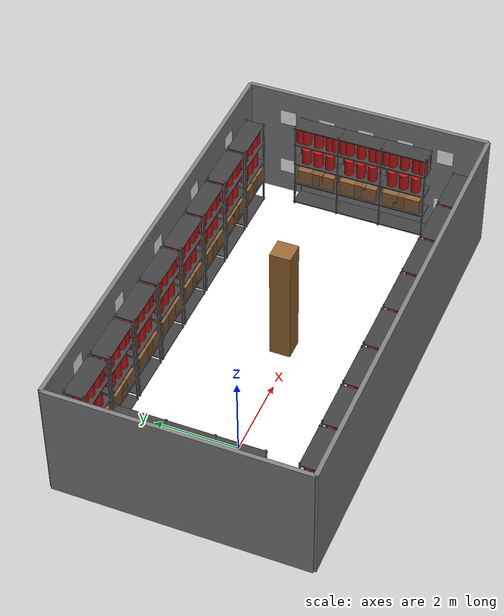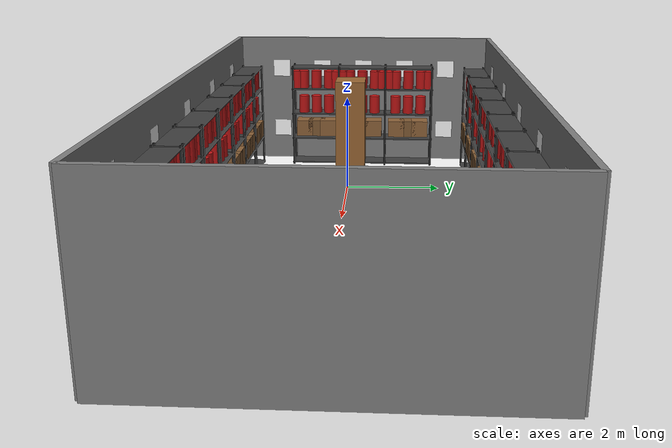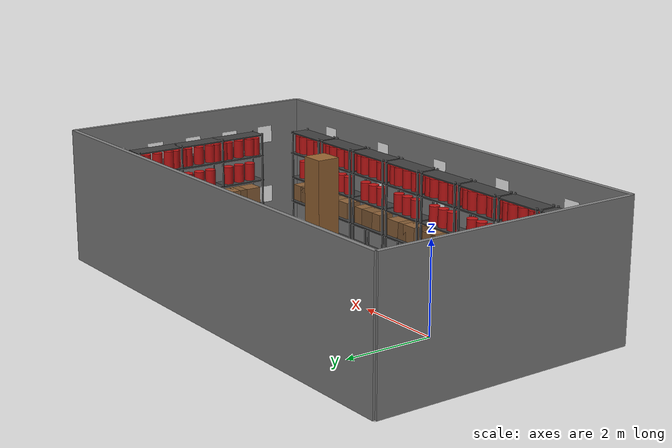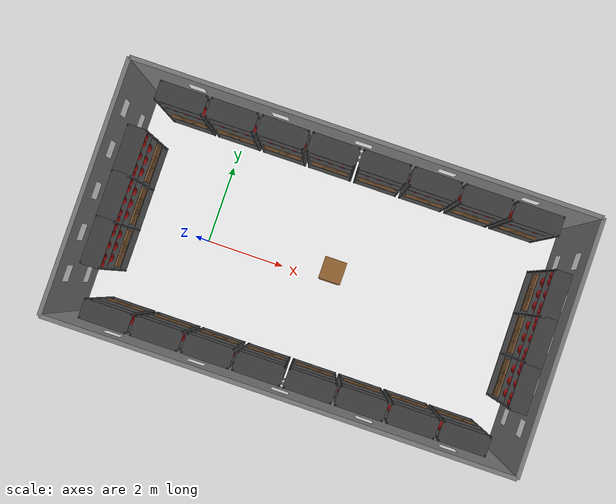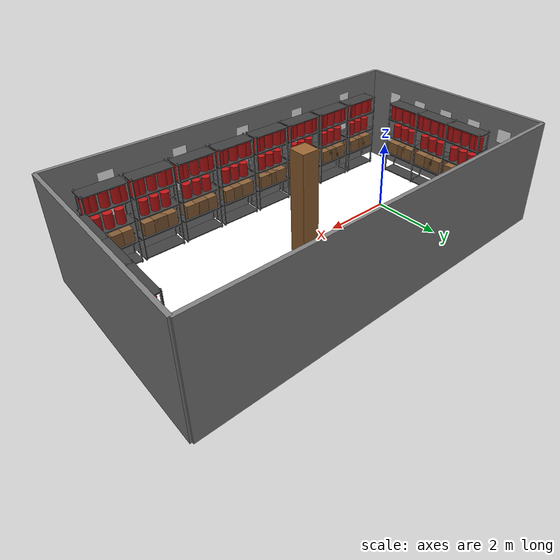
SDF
<?xml version="1.0"?>
<sdf version="1.7">
  <world name="bkk_daa">

<!-- Physics settings -->
<physics type="ode">
  <max_step_size>0.004</max_step_size>
  <real_time_factor>1.0</real_time_factor>
  <real_time_update_rate>250</real_time_update_rate>
</physics>
<gravity>0 0 -9.8</gravity>

<!-- Magnetic field - Taiwan location (23.089813°N, 120.307312°E) -->
<magnetic_field>2.5e-05 1.8e-05 -4.0e-05</magnetic_field>

<!-- Atmosphere -->
<atmosphere type="adiabatic"/>

<!-- Spherical coordinates for GPS - Taiwan location (7QM238Q4+WW) -->
<spherical_coordinates>
  <surface_model>EARTH_WGS84</surface_model>
  <world_frame_orientation>ENU</world_frame_orientation>
  <latitude_deg>23.089813</latitude_deg>
  <longitude_deg>120.307312</longitude_deg>
  <elevation>0</elevation>
</spherical_coordinates>

<!-- Scene settings with no shadows -->
<scene>
  <ambient>1 1 1 1</ambient>
  <background>1 1 1 1</background>
  <shadows>false</shadows>
</scene>

<!-- GUI camera with top-down view -->
<gui>
  <camera name="user_camera">
    <pose>1.0 -0.0 20 0 1.57 -1.5707963267948966</pose>
  </camera>
</gui>

<!-- Overhead directional light with no shadows -->
<light type="directional" name="no_shadow_light">
  <cast_shadows>false</cast_shadows>
  <pose>0 0 10 0 0 0</pose>
  <diffuse>1 1 1 1</diffuse>
  <specular>0.1 0.1 0.1 1</specular>
  <attenuation>
    <range>1000</range>
    <constant>1</constant>
    <linear>0</linear>
    <quadratic>0</quadratic>
  </attenuation>
  <direction>0 0 -1</direction>
</light>

<!-- Top-down camera directly above the grid -->
<model name="top_camera">
  <static>true</static>
  <pose>1.0 -0.0 20 0 1.5708 -1.5707963267948966</pose>
  <link name="link">
    <sensor name="top_down_camera" type="camera">
      <pose>0 0 0 0 0 0</pose>
      <camera>
        <horizontal_fov>1.047</horizontal_fov>
        <image>
          <width>800</width>
          <height>800</height>
          <format>R8G8B8</format>
        </image>
        <clip>
          <near>0.1</near>
          <far>100</far>
        </clip>
      </camera>
      <always_on>true</always_on>
      <update_rate>30</update_rate>
      <visualize>true</visualize>
    </sensor>
  </link>
</model>

    <!-- Outer green ground plane (6x11) -->
    <model name="outer_ground_plane">
      <static>true</static>
      <pose>3.0 0.25 -0.01 0 0 -1.5707963267948966</pose>
      <link name="link">
        <collision name="collision">
          <geometry>
            <plane>
              <normal>0 0 1</normal>
              <size>6 11</size>
            </plane>
          </geometry>
          <surface>
            <friction>
              <ode/>
            </friction>
            <bounce/>
            <contact/>
          </surface>
        </collision>
        <visual name="visual">
          <geometry>
            <plane>
              <normal>0 0 1</normal>
              <size>6 11</size>
            </plane>
          </geometry>
          <material>
            <diffuse>1 1 1 1</diffuse>
            <specular>0.1 0.1 0.1 1</specular>
            <pbr>
              <metal>
                <albedo_map>model://bkk_daa_floor_textures/floor_outer.png</albedo_map>
              </metal>
            </pbr>
          </material>
        </visual>
      </link>
    </model>

    <!-- Main brown ground plane (4.5x9) with origin at bottom-left corner -->
    <model name="ground_plane">
      <static>true</static>
      <pose>3.0 0.25 0 0 0 -1.5707963267948966</pose>
      <link name="link">
        <collision name="collision">
          <geometry>
            <plane>
              <normal>0 0 1</normal>
              <size>4.5 9</size>
            </plane>
          </geometry>
          <surface>
            <friction>
              <ode/>
            </friction>
            <bounce/>
            <contact/>
          </surface>
        </collision>
        <visual name="visual">
          <geometry>
            <plane>
              <normal>0 0 1</normal>
              <size>4.5 9</size>
            </plane>
          </geometry>
          <material>
            <diffuse>1 1 1 1</diffuse>
            <specular>0.1 0.1 0.1 1</specular>
            <pbr>
              <metal>
                <albedo_map>model://bkk_daa_floor_textures/floor_inner.png</albedo_map>
              </metal>
            </pbr>
          </material>
        </visual>
      </link>
    </model>

    <!-- Wall ArUco markers: DICT_4X4_50 ids 0-49 on interior faces (textures: wall_aruco_textures) -->

    <!-- Perimeter walls around outer green boundary (6x11) -->
    <model name="green_boundary_wall_north">
      <static>true</static>
      <pose>8.5 0.25 1.5 0 0 -1.5707963267948966</pose>
      <link name="link">
        <collision name="collision">
          <geometry>
            <box>
              <size>6.0 0.1 3.0</size>
            </box>
          </geometry>
        </collision>
        <visual name="visual">
          <geometry>
            <box>
              <size>6.0 0.1 3.0</size>
            </box>
          </geometry>
          <material>
            <ambient>0.3 0.3 0.3 1</ambient>
            <diffuse>0.5 0.5 0.5 1</diffuse>
            <specular>0.1 0.1 0.1 1</specular>
          </material>
        </visual>
        <visual name="aruco_00">
          <pose>-2.0 -0.051 -0.75 0 0 0</pose>
          <geometry>
            <plane>
              <normal>0 -1 0</normal>
              <size>0.4 0.4</size>
            </plane>
          </geometry>
          <material>
            <diffuse>1 1 1 1</diffuse>
            <specular>0.1 0.1 0.1 1</specular>
            <pbr>
              <metal>
                <albedo_map>model://wall_aruco_textures/marker_00.png</albedo_map>
              </metal>
            </pbr>
          </material>
        </visual>
        <visual name="aruco_01">
          <pose>-1.0 -0.051 -0.75 0 0 0</pose>
          <geometry>
            <plane>
              <normal>0 -1 0</normal>
              <size>0.4 0.4</size>
            </plane>
          </geometry>
          <material>
            <diffuse>1 1 1 1</diffuse>
            <specular>0.1 0.1 0.1 1</specular>
            <pbr>
              <metal>
                <albedo_map>model://wall_aruco_textures/marker_01.png</albedo_map>
              </metal>
            </pbr>
          </material>
        </visual>
        <visual name="aruco_02">
          <pose>0.0 -0.051 -0.75 0 0 0</pose>
          <geometry>
            <plane>
              <normal>0 -1 0</normal>
              <size>0.4 0.4</size>
            </plane>
          </geometry>
          <material>
            <diffuse>1 1 1 1</diffuse>
            <specular>0.1 0.1 0.1 1</specular>
            <pbr>
              <metal>
                <albedo_map>model://wall_aruco_textures/marker_02.png</albedo_map>
              </metal>
            </pbr>
          </material>
        </visual>
        <visual name="aruco_03">
          <pose>1.0 -0.051 -0.75 0 0 0</pose>
          <geometry>
            <plane>
              <normal>0 -1 0</normal>
              <size>0.4 0.4</size>
            </plane>
          </geometry>
          <material>
            <diffuse>1 1 1 1</diffuse>
            <specular>0.1 0.1 0.1 1</specular>
            <pbr>
              <metal>
                <albedo_map>model://wall_aruco_textures/marker_03.png</albedo_map>
              </metal>
            </pbr>
          </material>
        </visual>
        <visual name="aruco_04">
          <pose>2.0 -0.051 -0.75 0 0 0</pose>
          <geometry>
            <plane>
              <normal>0 -1 0</normal>
              <size>0.4 0.4</size>
            </plane>
          </geometry>
          <material>
            <diffuse>1 1 1 1</diffuse>
            <specular>0.1 0.1 0.1 1</specular>
            <pbr>
              <metal>
                <albedo_map>model://wall_aruco_textures/marker_04.png</albedo_map>
              </metal>
            </pbr>
          </material>
        </visual>
        <visual name="aruco_05">
          <pose>-2.0 -0.051 0.75 0 0 0</pose>
          <geometry>
            <plane>
              <normal>0 -1 0</normal>
              <size>0.4 0.4</size>
            </plane>
          </geometry>
          <material>
            <diffuse>1 1 1 1</diffuse>
            <specular>0.1 0.1 0.1 1</specular>
            <pbr>
              <metal>
                <albedo_map>model://wall_aruco_textures/marker_05.png</albedo_map>
              </metal>
            </pbr>
          </material>
        </visual>
        <visual name="aruco_06">
          <pose>-1.0 -0.051 0.75 0 0 0</pose>
          <geometry>
            <plane>
              <normal>0 -1 0</normal>
              <size>0.4 0.4</size>
            </plane>
          </geometry>
          <material>
            <diffuse>1 1 1 1</diffuse>
            <specular>0.1 0.1 0.1 1</specular>
            <pbr>
              <metal>
                <albedo_map>model://wall_aruco_textures/marker_06.png</albedo_map>
              </metal>
            </pbr>
          </material>
        </visual>
        <visual name="aruco_07">
          <pose>0.0 -0.051 0.75 0 0 0</pose>
          <geometry>
            <plane>
              <normal>0 -1 0</normal>
              <size>0.4 0.4</size>
            </plane>
          </geometry>
          <material>
            <diffuse>1 1 1 1</diffuse>
            <specular>0.1 0.1 0.1 1</specular>
            <pbr>
              <metal>
                <albedo_map>model://wall_aruco_textures/marker_07.png</albedo_map>
              </metal>
            </pbr>
          </material>
        </visual>
        <visual name="aruco_08">
          <pose>1.0 -0.051 0.75 0 0 0</pose>
          <geometry>
            <plane>
              <normal>0 -1 0</normal>
              <size>0.4 0.4</size>
            </plane>
          </geometry>
          <material>
            <diffuse>1 1 1 1</diffuse>
            <specular>0.1 0.1 0.1 1</specular>
            <pbr>
              <metal>
                <albedo_map>model://wall_aruco_textures/marker_08.png</albedo_map>
              </metal>
            </pbr>
          </material>
        </visual>
        <visual name="aruco_09">
          <pose>2.0 -0.051 0.75 0 0 0</pose>
          <geometry>
            <plane>
              <normal>0 -1 0</normal>
              <size>0.4 0.4</size>
            </plane>
          </geometry>
          <material>
            <diffuse>1 1 1 1</diffuse>
            <specular>0.1 0.1 0.1 1</specular>
            <pbr>
              <metal>
                <albedo_map>model://wall_aruco_textures/marker_09.png</albedo_map>
              </metal>
            </pbr>
          </material>
        </visual>
      </link>
    </model>

    <model name="green_boundary_wall_south">
      <static>true</static>
      <pose>-2.5 0.25 1.5 0 0 -1.5707963267948966</pose>
      <link name="link">
        <collision name="collision">
          <geometry>
            <box>
              <size>6.0 0.1 3.0</size>
            </box>
          </geometry>
        </collision>
        <visual name="visual">
          <geometry>
            <box>
              <size>6.0 0.1 3.0</size>
            </box>
          </geometry>
          <material>
            <ambient>0.3 0.3 0.3 1</ambient>
            <diffuse>0.5 0.5 0.5 1</diffuse>
            <specular>0.1 0.1 0.1 1</specular>
          </material>
        </visual>
        <visual name="aruco_10">
          <pose>-2.0 0.051 -0.75 0 0 0</pose>
          <geometry>
            <plane>
              <normal>0 1 0</normal>
              <size>0.4 0.4</size>
            </plane>
          </geometry>
          <material>
            <diffuse>1 1 1 1</diffuse>
            <specular>0.1 0.1 0.1 1</specular>
            <pbr>
              <metal>
                <albedo_map>model://wall_aruco_textures/marker_10.png</albedo_map>
              </metal>
            </pbr>
          </material>
        </visual>
        <visual name="aruco_11">
          <pose>-1.0 0.051 -0.75 0 0 0</pose>
          <geometry>
            <plane>
              <normal>0 1 0</normal>
              <size>0.4 0.4</size>
            </plane>
          </geometry>
          <material>
            <diffuse>1 1 1 1</diffuse>
            <specular>0.1 0.1 0.1 1</specular>
            <pbr>
              <metal>
                <albedo_map>model://wall_aruco_textures/marker_11.png</albedo_map>
              </metal>
            </pbr>
          </material>
        </visual>
        <visual name="aruco_12">
          <pose>0.0 0.051 -0.75 0 0 0</pose>
          <geometry>
            <plane>
              <normal>0 1 0</normal>
              <size>0.4 0.4</size>
            </plane>
          </geometry>
          <material>
            <diffuse>1 1 1 1</diffuse>
            <specular>0.1 0.1 0.1 1</specular>
            <pbr>
              <metal>
                <albedo_map>model://wall_aruco_textures/marker_12.png</albedo_map>
              </metal>
            </pbr>
          </material>
        </visual>
        <visual name="aruco_13">
          <pose>1.0 0.051 -0.75 0 0 0</pose>
          <geometry>
            <plane>
              <normal>0 1 0</normal>
              <size>0.4 0.4</size>
            </plane>
          </geometry>
          <material>
            <diffuse>1 1 1 1</diffuse>
            <specular>0.1 0.1 0.1 1</specular>
            <pbr>
              <metal>
                <albedo_map>model://wall_aruco_textures/marker_13.png</albedo_map>
              </metal>
            </pbr>
          </material>
        </visual>
        <visual name="aruco_14">
          <pose>2.0 0.051 -0.75 0 0 0</pose>
          <geometry>
            <plane>
              <normal>0 1 0</normal>
              <size>0.4 0.4</size>
            </plane>
          </geometry>
          <material>
            <diffuse>1 1 1 1</diffuse>
            <specular>0.1 0.1 0.1 1</specular>
            <pbr>
              <metal>
                <albedo_map>model://wall_aruco_textures/marker_14.png</albedo_map>
              </metal>
            </pbr>
          </material>
        </visual>
        <visual name="aruco_15">
          <pose>-2.0 0.051 0.75 0 0 0</pose>
          <geometry>
            <plane>
              <normal>0 1 0</normal>
              <size>0.4 0.4</size>
            </plane>
          </geometry>
          <material>
            <diffuse>1 1 1 1</diffuse>
            <specular>0.1 0.1 0.1 1</specular>
            <pbr>
              <metal>
                <albedo_map>model://wall_aruco_textures/marker_15.png</albedo_map>
              </metal>
            </pbr>
          </material>
        </visual>
        <visual name="aruco_16">
          <pose>-1.0 0.051 0.75 0 0 0</pose>
          <geometry>
            <plane>
              <normal>0 1 0</normal>
              <size>0.4 0.4</size>
            </plane>
          </geometry>
          <material>
            <diffuse>1 1 1 1</diffuse>
            <specular>0.1 0.1 0.1 1</specular>
            <pbr>
              <metal>
                <albedo_map>model://wall_aruco_textures/marker_16.png</albedo_map>
              </metal>
            </pbr>
          </material>
        </visual>
        <visual name="aruco_17">
          <pose>0.0 0.051 0.75 0 0 0</pose>
          <geometry>
            <plane>
              <normal>0 1 0</normal>
              <size>0.4 0.4</size>
            </plane>
          </geometry>
          <material>
            <diffuse>1 1 1 1</diffuse>
            <specular>0.1 0.1 0.1 1</specular>
            <pbr>
              <metal>
                <albedo_map>model://wall_aruco_textures/marker_17.png</albedo_map>
              </metal>
            </pbr>
          </material>
        </visual>
        <visual name="aruco_18">
          <pose>1.0 0.051 0.75 0 0 0</pose>
          <geometry>
            <plane>
              <normal>0 1 0</normal>
              <size>0.4 0.4</size>
            </plane>
          </geometry>
          <material>
            <diffuse>1 1 1 1</diffuse>
            <specular>0.1 0.1 0.1 1</specular>
            <pbr>
              <metal>
                <albedo_map>model://wall_aruco_textures/marker_18.png</albedo_map>
              </metal>
            </pbr>
          </material>
        </visual>
        <visual name="aruco_19">
          <pose>2.0 0.051 0.75 0 0 0</pose>
          <geometry>
            <plane>
              <normal>0 1 0</normal>
              <size>0.4 0.4</size>
            </plane>
          </geometry>
          <material>
            <diffuse>1 1 1 1</diffuse>
            <specular>0.1 0.1 0.1 1</specular>
            <pbr>
              <metal>
                <albedo_map>model://wall_aruco_textures/marker_19.png</albedo_map>
              </metal>
            </pbr>
          </material>
        </visual>
      </link>
    </model>

    <model name="green_boundary_wall_east">
      <static>true</static>
      <pose>3.0 -2.75 1.5 0 0 -1.5707963267948966</pose>
      <link name="link">
        <collision name="collision">
          <geometry>
            <box>
              <size>0.1 11.0 3.0</size>
            </box>
          </geometry>
        </collision>
        <visual name="visual">
          <geometry>
            <box>
              <size>0.1 11.0 3.0</size>
            </box>
          </geometry>
          <material>
            <ambient>0.3 0.3 0.3 1</ambient>
            <diffuse>0.5 0.5 0.5 1</diffuse>
            <specular>0.1 0.1 0.1 1</specular>
          </material>
        </visual>
        <visual name="aruco_20">
          <pose>-0.051 -4.0 -0.85 0 0 0</pose>
          <geometry>
            <plane>
              <normal>-1 0 0</normal>
              <size>0.4 0.4</size>
            </plane>
          </geometry>
          <material>
            <diffuse>1 1 1 1</diffuse>
            <specular>0.1 0.1 0.1 1</specular>
            <pbr>
              <metal>
                <albedo_map>model://wall_aruco_textures/marker_20.png</albedo_map>
              </metal>
            </pbr>
          </material>
        </visual>
        <visual name="aruco_21">
          <pose>-0.051 -2.0 -0.85 0 0 0</pose>
          <geometry>
            <plane>
              <normal>-1 0 0</normal>
              <size>0.4 0.4</size>
            </plane>
          </geometry>
          <material>
            <diffuse>1 1 1 1</diffuse>
            <specular>0.1 0.1 0.1 1</specular>
            <pbr>
              <metal>
                <albedo_map>model://wall_aruco_textures/marker_21.png</albedo_map>
              </metal>
            </pbr>
          </material>
        </visual>
        <visual name="aruco_22">
          <pose>-0.051 0.0 -0.85 0 0 0</pose>
          <geometry>
            <plane>
              <normal>-1 0 0</normal>
              <size>0.4 0.4</size>
            </plane>
          </geometry>
          <material>
            <diffuse>1 1 1 1</diffuse>
            <specular>0.1 0.1 0.1 1</specular>
            <pbr>
              <metal>
                <albedo_map>model://wall_aruco_textures/marker_22.png</albedo_map>
              </metal>
            </pbr>
          </material>
        </visual>
        <visual name="aruco_23">
          <pose>-0.051 2.0 -0.85 0 0 0</pose>
          <geometry>
            <plane>
              <normal>-1 0 0</normal>
              <size>0.4 0.4</size>
            </plane>
          </geometry>
          <material>
            <diffuse>1 1 1 1</diffuse>
            <specular>0.1 0.1 0.1 1</specular>
            <pbr>
              <metal>
                <albedo_map>model://wall_aruco_textures/marker_23.png</albedo_map>
              </metal>
            </pbr>
          </material>
        </visual>
        <visual name="aruco_24">
          <pose>-0.051 4.0 -0.85 0 0 0</pose>
          <geometry>
            <plane>
              <normal>-1 0 0</normal>
              <size>0.4 0.4</size>
            </plane>
          </geometry>
          <material>
            <diffuse>1 1 1 1</diffuse>
            <specular>0.1 0.1 0.1 1</specular>
            <pbr>
              <metal>
                <albedo_map>model://wall_aruco_textures/marker_24.png</albedo_map>
              </metal>
            </pbr>
          </material>
        </visual>
        <visual name="aruco_25">
          <pose>-0.051 -4.0 0.0 0 0 0</pose>
          <geometry>
            <plane>
              <normal>-1 0 0</normal>
              <size>0.4 0.4</size>
            </plane>
          </geometry>
          <material>
            <diffuse>1 1 1 1</diffuse>
            <specular>0.1 0.1 0.1 1</specular>
            <pbr>
              <metal>
                <albedo_map>model://wall_aruco_textures/marker_25.png</albedo_map>
              </metal>
            </pbr>
          </material>
        </visual>
        <visual name="aruco_26">
          <pose>-0.051 -2.0 0.0 0 0 0</pose>
          <geometry>
            <plane>
              <normal>-1 0 0</normal>
              <size>0.4 0.4</size>
            </plane>
          </geometry>
          <material>
            <diffuse>1 1 1 1</diffuse>
            <specular>0.1 0.1 0.1 1</specular>
            <pbr>
              <metal>
                <albedo_map>model://wall_aruco_textures/marker_26.png</albedo_map>
              </metal>
            </pbr>
          </material>
        </visual>
        <visual name="aruco_27">
          <pose>-0.051 0.0 0.0 0 0 0</pose>
          <geometry>
            <plane>
              <normal>-1 0 0</normal>
              <size>0.4 0.4</size>
            </plane>
          </geometry>
          <material>
            <diffuse>1 1 1 1</diffuse>
            <specular>0.1 0.1 0.1 1</specular>
            <pbr>
              <metal>
                <albedo_map>model://wall_aruco_textures/marker_27.png</albedo_map>
              </metal>
            </pbr>
          </material>
        </visual>
        <visual name="aruco_28">
          <pose>-0.051 2.0 0.0 0 0 0</pose>
          <geometry>
            <plane>
              <normal>-1 0 0</normal>
              <size>0.4 0.4</size>
            </plane>
          </geometry>
          <material>
            <diffuse>1 1 1 1</diffuse>
            <specular>0.1 0.1 0.1 1</specular>
            <pbr>
              <metal>
                <albedo_map>model://wall_aruco_textures/marker_28.png</albedo_map>
              </metal>
            </pbr>
          </material>
        </visual>
        <visual name="aruco_29">
          <pose>-0.051 4.0 0.0 0 0 0</pose>
          <geometry>
            <plane>
              <normal>-1 0 0</normal>
              <size>0.4 0.4</size>
            </plane>
          </geometry>
          <material>
            <diffuse>1 1 1 1</diffuse>
            <specular>0.1 0.1 0.1 1</specular>
            <pbr>
              <metal>
                <albedo_map>model://wall_aruco_textures/marker_29.png</albedo_map>
              </metal>
            </pbr>
          </material>
        </visual>
        <visual name="aruco_30">
          <pose>-0.051 -4.0 0.85 0 0 0</pose>
          <geometry>
            <plane>
              <normal>-1 0 0</normal>
              <size>0.4 0.4</size>
            </plane>
          </geometry>
          <material>
            <diffuse>1 1 1 1</diffuse>
            <specular>0.1 0.1 0.1 1</specular>
            <pbr>
              <metal>
                <albedo_map>model://wall_aruco_textures/marker_30.png</albedo_map>
              </metal>
            </pbr>
          </material>
        </visual>
        <visual name="aruco_31">
          <pose>-0.051 -2.0 0.85 0 0 0</pose>
          <geometry>
            <plane>
              <normal>-1 0 0</normal>
              <size>0.4 0.4</size>
            </plane>
          </geometry>
          <material>
            <diffuse>1 1 1 1</diffuse>
            <specular>0.1 0.1 0.1 1</specular>
            <pbr>
              <metal>
                <albedo_map>model://wall_aruco_textures/marker_31.png</albedo_map>
              </metal>
            </pbr>
          </material>
        </visual>
        <visual name="aruco_32">
          <pose>-0.051 0.0 0.85 0 0 0</pose>
          <geometry>
            <plane>
              <normal>-1 0 0</normal>
              <size>0.4 0.4</size>
            </plane>
          </geometry>
          <material>
            <diffuse>1 1 1 1</diffuse>
            <specular>0.1 0.1 0.1 1</specular>
            <pbr>
              <metal>
                <albedo_map>model://wall_aruco_textures/marker_32.png</albedo_map>
              </metal>
            </pbr>
          </material>
        </visual>
        <visual name="aruco_33">
          <pose>-0.051 2.0 0.85 0 0 0</pose>
          <geometry>
            <plane>
              <normal>-1 0 0</normal>
              <size>0.4 0.4</size>
            </plane>
          </geometry>
          <material>
            <diffuse>1 1 1 1</diffuse>
            <specular>0.1 0.1 0.1 1</specular>
            <pbr>
              <metal>
                <albedo_map>model://wall_aruco_textures/marker_33.png</albedo_map>
              </metal>
            </pbr>
          </material>
        </visual>
        <visual name="aruco_34">
          <pose>-0.051 4.0 0.85 0 0 0</pose>
          <geometry>
            <plane>
              <normal>-1 0 0</normal>
              <size>0.4 0.4</size>
            </plane>
          </geometry>
          <material>
            <diffuse>1 1 1 1</diffuse>
            <specular>0.1 0.1 0.1 1</specular>
            <pbr>
              <metal>
                <albedo_map>model://wall_aruco_textures/marker_34.png</albedo_map>
              </metal>
            </pbr>
          </material>
        </visual>
      </link>
    </model>

    <model name="green_boundary_wall_west">
      <static>true</static>
      <pose>3.0 3.25 1.5 0 0 -1.5707963267948966</pose>
      <link name="link">
        <collision name="collision">
          <geometry>
            <box>
              <size>0.1 11.0 3.0</size>
            </box>
          </geometry>
        </collision>
        <visual name="visual">
          <geometry>
            <box>
              <size>0.1 11.0 3.0</size>
            </box>
          </geometry>
          <material>
            <ambient>0.3 0.3 0.3 1</ambient>
            <diffuse>0.5 0.5 0.5 1</diffuse>
            <specular>0.1 0.1 0.1 1</specular>
          </material>
        </visual>
        <visual name="aruco_35">
          <pose>0.051 -4.0 -0.85 0 0 0</pose>
          <geometry>
            <plane>
              <normal>1 0 0</normal>
              <size>0.4 0.4</size>
            </plane>
          </geometry>
          <material>
            <diffuse>1 1 1 1</diffuse>
            <specular>0.1 0.1 0.1 1</specular>
            <pbr>
              <metal>
                <albedo_map>model://wall_aruco_textures/marker_35.png</albedo_map>
              </metal>
            </pbr>
          </material>
        </visual>
        <visual name="aruco_36">
          <pose>0.051 -2.0 -0.85 0 0 0</pose>
          <geometry>
            <plane>
              <normal>1 0 0</normal>
              <size>0.4 0.4</size>
            </plane>
          </geometry>
          <material>
            <diffuse>1 1 1 1</diffuse>
            <specular>0.1 0.1 0.1 1</specular>
            <pbr>
              <metal>
                <albedo_map>model://wall_aruco_textures/marker_36.png</albedo_map>
              </metal>
            </pbr>
          </material>
        </visual>
        <visual name="aruco_37">
          <pose>0.051 0.0 -0.85 0 0 0</pose>
          <geometry>
            <plane>
              <normal>1 0 0</normal>
              <size>0.4 0.4</size>
            </plane>
          </geometry>
          <material>
            <diffuse>1 1 1 1</diffuse>
            <specular>0.1 0.1 0.1 1</specular>
            <pbr>
              <metal>
                <albedo_map>model://wall_aruco_textures/marker_37.png</albedo_map>
              </metal>
            </pbr>
          </material>
        </visual>
        <visual name="aruco_38">
          <pose>0.051 2.0 -0.85 0 0 0</pose>
          <geometry>
            <plane>
              <normal>1 0 0</normal>
              <size>0.4 0.4</size>
            </plane>
          </geometry>
          <material>
            <diffuse>1 1 1 1</diffuse>
            <specular>0.1 0.1 0.1 1</specular>
            <pbr>
              <metal>
                <albedo_map>model://wall_aruco_textures/marker_38.png</albedo_map>
              </metal>
            </pbr>
          </material>
        </visual>
        <visual name="aruco_39">
          <pose>0.051 4.0 -0.85 0 0 0</pose>
          <geometry>
            <plane>
              <normal>1 0 0</normal>
              <size>0.4 0.4</size>
            </plane>
          </geometry>
          <material>
            <diffuse>1 1 1 1</diffuse>
            <specular>0.1 0.1 0.1 1</specular>
            <pbr>
              <metal>
                <albedo_map>model://wall_aruco_textures/marker_39.png</albedo_map>
              </metal>
            </pbr>
          </material>
        </visual>
        <visual name="aruco_40">
          <pose>0.051 -4.0 0.0 0 0 0</pose>
          <geometry>
            <plane>
              <normal>1 0 0</normal>
              <size>0.4 0.4</size>
            </plane>
          </geometry>
          <material>
            <diffuse>1 1 1 1</diffuse>
            <specular>0.1 0.1 0.1 1</specular>
            <pbr>
              <metal>
                <albedo_map>model://wall_aruco_textures/marker_40.png</albedo_map>
              </metal>
            </pbr>
          </material>
        </visual>
        <visual name="aruco_41">
          <pose>0.051 -2.0 0.0 0 0 0</pose>
          <geometry>
            <plane>
              <normal>1 0 0</normal>
              <size>0.4 0.4</size>
            </plane>
          </geometry>
          <material>
            <diffuse>1 1 1 1</diffuse>
            <specular>0.1 0.1 0.1 1</specular>
            <pbr>
              <metal>
                <albedo_map>model://wall_aruco_textures/marker_41.png</albedo_map>
              </metal>
            </pbr>
          </material>
        </visual>
        <visual name="aruco_42">
          <pose>0.051 0.0 0.0 0 0 0</pose>
          <geometry>
            <plane>
              <normal>1 0 0</normal>
              <size>0.4 0.4</size>
            </plane>
          </geometry>
          <material>
            <diffuse>1 1 1 1</diffuse>
            <specular>0.1 0.1 0.1 1</specular>
            <pbr>
              <metal>
                <albedo_map>model://wall_aruco_textures/marker_42.png</albedo_map>
              </metal>
            </pbr>
          </material>
        </visual>
        <visual name="aruco_43">
          <pose>0.051 2.0 0.0 0 0 0</pose>
          <geometry>
            <plane>
              <normal>1 0 0</normal>
              <size>0.4 0.4</size>
            </plane>
          </geometry>
          <material>
            <diffuse>1 1 1 1</diffuse>
            <specular>0.1 0.1 0.1 1</specular>
            <pbr>
              <metal>
                <albedo_map>model://wall_aruco_textures/marker_43.png</albedo_map>
              </metal>
            </pbr>
          </material>
        </visual>
        <visual name="aruco_44">
          <pose>0.051 4.0 0.0 0 0 0</pose>
          <geometry>
            <plane>
              <normal>1 0 0</normal>
              <size>0.4 0.4</size>
            </plane>
          </geometry>
          <material>
            <diffuse>1 1 1 1</diffuse>
            <specular>0.1 0.1 0.1 1</specular>
            <pbr>
              <metal>
                <albedo_map>model://wall_aruco_textures/marker_44.png</albedo_map>
              </metal>
            </pbr>
          </material>
        </visual>
        <visual name="aruco_45">
          <pose>0.051 -4.0 0.85 0 0 0</pose>
          <geometry>
            <plane>
              <normal>1 0 0</normal>
              <size>0.4 0.4</size>
            </plane>
          </geometry>
          <material>
            <diffuse>1 1 1 1</diffuse>
            <specular>0.1 0.1 0.1 1</specular>
            <pbr>
              <metal>
                <albedo_map>model://wall_aruco_textures/marker_45.png</albedo_map>
              </metal>
            </pbr>
          </material>
        </visual>
        <visual name="aruco_46">
          <pose>0.051 -2.0 0.85 0 0 0</pose>
          <geometry>
            <plane>
              <normal>1 0 0</normal>
              <size>0.4 0.4</size>
            </plane>
          </geometry>
          <material>
            <diffuse>1 1 1 1</diffuse>
            <specular>0.1 0.1 0.1 1</specular>
            <pbr>
              <metal>
                <albedo_map>model://wall_aruco_textures/marker_46.png</albedo_map>
              </metal>
            </pbr>
          </material>
        </visual>
        <visual name="aruco_47">
          <pose>0.051 0.0 0.85 0 0 0</pose>
          <geometry>
            <plane>
              <normal>1 0 0</normal>
              <size>0.4 0.4</size>
            </plane>
          </geometry>
          <material>
            <diffuse>1 1 1 1</diffuse>
            <specular>0.1 0.1 0.1 1</specular>
            <pbr>
              <metal>
                <albedo_map>model://wall_aruco_textures/marker_47.png</albedo_map>
              </metal>
            </pbr>
          </material>
        </visual>
        <visual name="aruco_48">
          <pose>0.051 2.0 0.85 0 0 0</pose>
          <geometry>
            <plane>
              <normal>1 0 0</normal>
              <size>0.4 0.4</size>
            </plane>
          </geometry>
          <material>
            <diffuse>1 1 1 1</diffuse>
            <specular>0.1 0.1 0.1 1</specular>
            <pbr>
              <metal>
                <albedo_map>model://wall_aruco_textures/marker_48.png</albedo_map>
              </metal>
            </pbr>
          </material>
        </visual>
        <visual name="aruco_49">
          <pose>0.051 4.0 0.85 0 0 0</pose>
          <geometry>
            <plane>
              <normal>1 0 0</normal>
              <size>0.4 0.4</size>
            </plane>
          </geometry>
          <material>
            <diffuse>1 1 1 1</diffuse>
            <specular>0.1 0.1 0.1 1</specular>
            <pbr>
              <metal>
                <albedo_map>model://wall_aruco_textures/marker_49.png</albedo_map>
              </metal>
            </pbr>
          </material>
        </visual>
      </link>
    </model>

    <!-- Perimeter cabinets in green border ring (generated) -->
    <include>
      <uri>model://depot_barrel_rack</uri>
      <name>perimeter_cabinet_00</name>
      <pose>-1.2874999999999996 2.875 0.0 0 0 1.5707963267948966</pose>
    </include>
    <include>
      <uri>model://depot_barrel_rack</uri>
      <name>perimeter_cabinet_01</name>
      <pose>-0.06249999999999978 2.875 0.0 0 0 1.5707963267948966</pose>
    </include>
    <include>
      <uri>model://depot_barrel_rack</uri>
      <name>perimeter_cabinet_02</name>
      <pose>1.1625 2.875 0.0 0 0 1.5707963267948966</pose>
    </include>
    <include>
      <uri>model://depot_barrel_rack</uri>
      <name>perimeter_cabinet_03</name>
      <pose>2.3875000000000006 2.875 0.0 0 0 1.5707963267948966</pose>
    </include>
    <include>
      <uri>model://depot_barrel_rack</uri>
      <name>perimeter_cabinet_04</name>
      <pose>3.6125000000000007 2.875 0.0 0 0 1.5707963267948966</pose>
    </include>
    <include>
      <uri>model://depot_barrel_rack</uri>
      <name>perimeter_cabinet_05</name>
      <pose>4.8375 2.875 0.0 0 0 1.5707963267948966</pose>
    </include>
    <include>
      <uri>model://depot_barrel_rack</uri>
      <name>perimeter_cabinet_06</name>
      <pose>6.0625 2.875 0.0 0 0 1.5707963267948966</pose>
    </include>
    <include>
      <uri>model://depot_barrel_rack</uri>
      <name>perimeter_cabinet_07</name>
      <pose>7.2875 2.875 0.0 0 0 1.5707963267948966</pose>
    </include>
    <include>
      <uri>model://depot_barrel_rack</uri>
      <name>perimeter_cabinet_08</name>
      <pose>-1.2874999999999996 -2.375 0.0 0 0 -1.5707963267948966</pose>
    </include>
    <include>
      <uri>model://depot_barrel_rack</uri>
      <name>perimeter_cabinet_09</name>
      <pose>-0.06249999999999978 -2.375 0.0 0 0 -1.5707963267948966</pose>
    </include>
    <include>
      <uri>model://depot_barrel_rack</uri>
      <name>perimeter_cabinet_10</name>
      <pose>1.1625 -2.375 0.0 0 0 -1.5707963267948966</pose>
    </include>
    <include>
      <uri>model://depot_barrel_rack</uri>
      <name>perimeter_cabinet_11</name>
      <pose>2.3875000000000006 -2.375 0.0 0 0 -1.5707963267948966</pose>
    </include>
    <include>
      <uri>model://depot_barrel_rack</uri>
      <name>perimeter_cabinet_12</name>
      <pose>3.6125000000000007 -2.375 0.0 0 0 -1.5707963267948966</pose>
    </include>
    <include>
      <uri>model://depot_barrel_rack</uri>
      <name>perimeter_cabinet_13</name>
      <pose>4.8375 -2.375 0.0 0 0 -1.5707963267948966</pose>
    </include>
    <include>
      <uri>model://depot_barrel_rack</uri>
      <name>perimeter_cabinet_14</name>
      <pose>6.0625 -2.375 0.0 0 0 -1.5707963267948966</pose>
    </include>
    <include>
      <uri>model://depot_barrel_rack</uri>
      <name>perimeter_cabinet_15</name>
      <pose>7.2875 -2.375 0.0 0 0 -1.5707963267948966</pose>
    </include>
    <include>
      <uri>model://depot_barrel_rack</uri>
      <name>perimeter_cabinet_16</name>
      <pose>8.25 1.35 0.0 0 0 0.0</pose>
    </include>
    <include>
      <uri>model://depot_barrel_rack</uri>
      <name>perimeter_cabinet_17</name>
      <pose>8.25 0.25 0.0 0 0 0.0</pose>
    </include>
    <include>
      <uri>model://depot_barrel_rack</uri>
      <name>perimeter_cabinet_18</name>
      <pose>8.25 -0.8499999999999996 0.0 0 0 0.0</pose>
    </include>
    <include>
      <uri>model://depot_barrel_rack</uri>
      <name>perimeter_cabinet_19</name>
      <pose>-2.0 1.35 0.0 0 0 -3.141592653589793</pose>
    </include>
    <include>
      <uri>model://depot_barrel_rack</uri>
      <name>perimeter_cabinet_20</name>
      <pose>-2.0 0.25 0.0 0 0 -3.141592653589793</pose>
    </include>
    <include>
      <uri>model://depot_barrel_rack</uri>
      <name>perimeter_cabinet_21</name>
      <pose>-2.0 -0.8499999999999996 0.0 0 0 -3.141592653589793</pose>
    </include>
    <!-- Middle-left row block 5: height 3.0m -->
    <model name="middle_left_5">
      <static>true</static>
      <pose>3.25 0.25 1.5 0 0 -1.5707963267948966</pose>
      <link name="stack_link">
        <collision name="collision">
          <geometry>
            <box>
              <size>0.5 0.5 3.0</size>
            </box>
          </geometry>
        </collision>
        <visual name="visual">
          <geometry>
            <box>
              <size>0.5 0.5 3.0</size>
            </box>
          </geometry>
          <material>
            <ambient>0.4 0.25 0.1 1</ambient>
            <diffuse>0.6 0.4 0.2 1</diffuse>
            <specular>0.1 0.1 0.1 1</specular>
          </material>
        </visual>
        <inertial>
          <mass>3.0</mass>
          <inertia>
            <ixx>0.172</ixx>
            <ixy>0</ixy>
            <ixz>0</ixz>
            <iyy>0.172</iyy>
            <iyz>0</iyz>
            <izz>0.042</izz>
          </inertia>
        </inertial>
      </link>
    </model>

  </world>
</sdf>

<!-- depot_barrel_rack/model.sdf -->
<sdf version="1.9">
  <model name="depot_barrel_rack">
    <static>true</static>
    <!-- Single shelving cabinet: 1.2 m wide x 0.5 m deep x 2.4 m tall -->
    <link name="link">
      <!-- Frame posts -->
      <visual name="post_fl"><pose>-0.22  0.55 1.2 0 0 0</pose><geometry><box><size>0.04 0.04 2.4</size></box></geometry><material><diffuse>0.15 0.15 0.15 1</diffuse></material></visual>
      <visual name="post_fr"><pose>-0.22 -0.55 1.2 0 0 0</pose><geometry><box><size>0.04 0.04 2.4</size></box></geometry><material><diffuse>0.15 0.15 0.15 1</diffuse></material></visual>
      <visual name="post_bl"><pose> 0.22  0.55 1.2 0 0 0</pose><geometry><box><size>0.04 0.04 2.4</size></box></geometry><material><diffuse>0.15 0.15 0.15 1</diffuse></material></visual>
      <visual name="post_br"><pose> 0.22 -0.55 1.2 0 0 0</pose><geometry><box><size>0.04 0.04 2.4</size></box></geometry><material><diffuse>0.15 0.15 0.15 1</diffuse></material></visual>
      <!-- Shelves -->
      <visual name="shelf_0"><pose>0 0 0.05 0 0 0</pose><geometry><box><size>0.48 1.16 0.03</size></box></geometry><material><diffuse>0.25 0.25 0.25 1</diffuse></material></visual>
      <visual name="shelf_1"><pose>0 0 0.65 0 0 0</pose><geometry><box><size>0.48 1.16 0.03</size></box></geometry><material><diffuse>0.25 0.25 0.25 1</diffuse></material></visual>
      <visual name="shelf_2"><pose>0 0 1.25 0 0 0</pose><geometry><box><size>0.48 1.16 0.03</size></box></geometry><material><diffuse>0.25 0.25 0.25 1</diffuse></material></visual>
      <visual name="shelf_3"><pose>0 0 1.85 0 0 0</pose><geometry><box><size>0.48 1.16 0.03</size></box></geometry><material><diffuse>0.25 0.25 0.25 1</diffuse></material></visual>
      <visual name="shelf_4"><pose>0 0 2.35 0 0 0</pose><geometry><box><size>0.48 1.16 0.03</size></box></geometry><material><diffuse>0.25 0.25 0.25 1</diffuse></material></visual>
      <!-- Top shelf: red barrels -->
      <visual name="barrel_0"><pose>-0.05  0.30 2.05 0 0 0</pose><geometry><cylinder><radius>0.12</radius><length>0.45</length></cylinder></geometry><material><diffuse>0.75 0.08 0.08 1</diffuse><specular>0.4 0.1 0.1 1</specular></material></visual>
      <visual name="barrel_1"><pose>-0.05  0.00 2.05 0 0 0</pose><geometry><cylinder><radius>0.12</radius><length>0.45</length></cylinder></geometry><material><diffuse>0.75 0.08 0.08 1</diffuse><specular>0.4 0.1 0.1 1</specular></material></visual>
      <visual name="barrel_2"><pose>-0.05 -0.30 2.05 0 0 0</pose><geometry><cylinder><radius>0.12</radius><length>0.45</length></cylinder></geometry><material><diffuse>0.75 0.08 0.08 1</diffuse><specular>0.4 0.1 0.1 1</specular></material></visual>
      <visual name="barrel_3"><pose>-0.05  0.45 2.05 0 0 0</pose><geometry><cylinder><radius>0.12</radius><length>0.45</length></cylinder></geometry><material><diffuse>0.75 0.08 0.08 1</diffuse><specular>0.4 0.1 0.1 1</specular></material></visual>
      <visual name="barrel_4"><pose>-0.05 -0.45 2.05 0 0 0</pose><geometry><cylinder><radius>0.12</radius><length>0.45</length></cylinder></geometry><material><diffuse>0.75 0.08 0.08 1</diffuse><specular>0.4 0.1 0.1 1</specular></material></visual>
      <!-- Mid shelf: red barrels -->
      <visual name="barrel_5"><pose>-0.05  0.30 1.45 0 0 0</pose><geometry><cylinder><radius>0.12</radius><length>0.45</length></cylinder></geometry><material><diffuse>0.75 0.08 0.08 1</diffuse><specular>0.4 0.1 0.1 1</specular></material></visual>
      <visual name="barrel_6"><pose>-0.05  0.00 1.45 0 0 0</pose><geometry><cylinder><radius>0.12</radius><length>0.45</length></cylinder></geometry><material><diffuse>0.75 0.08 0.08 1</diffuse><specular>0.4 0.1 0.1 1</specular></material></visual>
      <visual name="barrel_7"><pose>-0.05 -0.30 1.45 0 0 0</pose><geometry><cylinder><radius>0.12</radius><length>0.45</length></cylinder></geometry><material><diffuse>0.75 0.08 0.08 1</diffuse><specular>0.4 0.1 0.1 1</specular></material></visual>
      <!-- Lower shelf: wooden crates -->
      <visual name="crate_0"><pose>-0.05  0.28 0.90 0 0 0</pose><geometry><box><size>0.38 0.38 0.38</size></box></geometry><material><diffuse>0.55 0.38 0.22 1</diffuse></material></visual>
      <visual name="crate_1"><pose>-0.05 -0.28 0.90 0 0 0</pose><geometry><box><size>0.38 0.38 0.38</size></box></geometry><material><diffuse>0.55 0.38 0.22 1</diffuse></material></visual>
      <visual name="crate_2"><pose>-0.05  0.00 0.90 0 0 0</pose><geometry><box><size>0.38 0.38 0.38</size></box></geometry><material><diffuse>0.50 0.35 0.20 1</diffuse></material></visual>
      <collision name="collision">
        <geometry>
          <box>
            <size>0.5 1.2 2.4</size>
          </box>
        </geometry>
      </collision>
    </link>
  </model>
</sdf>
